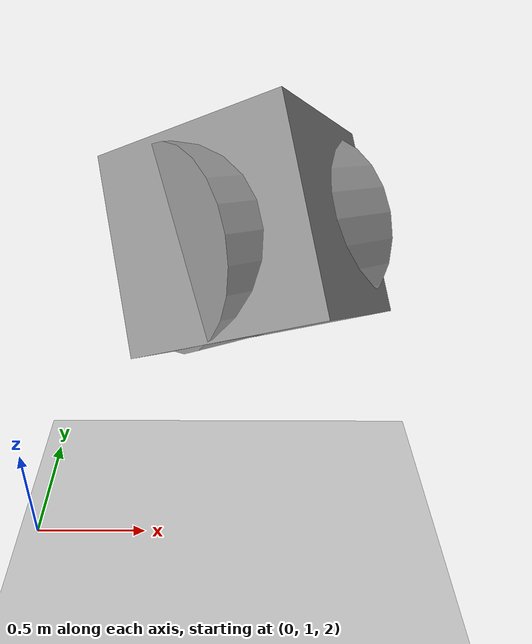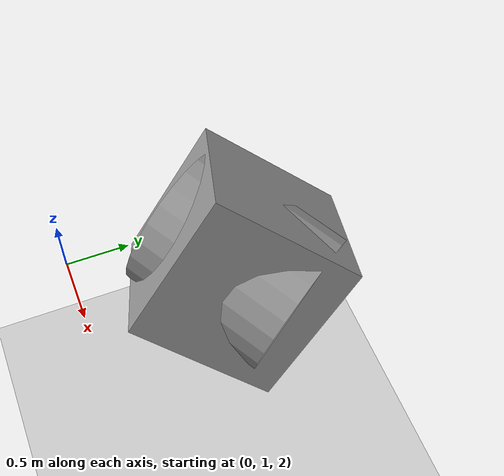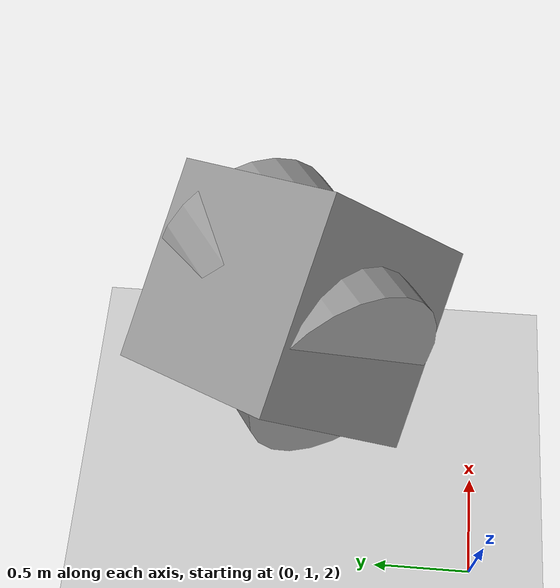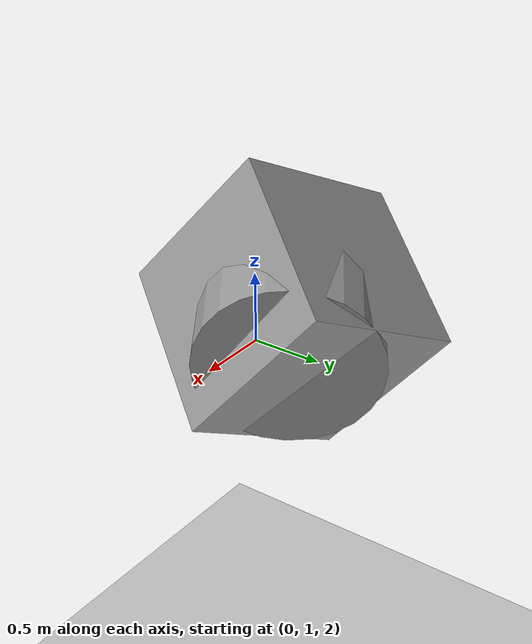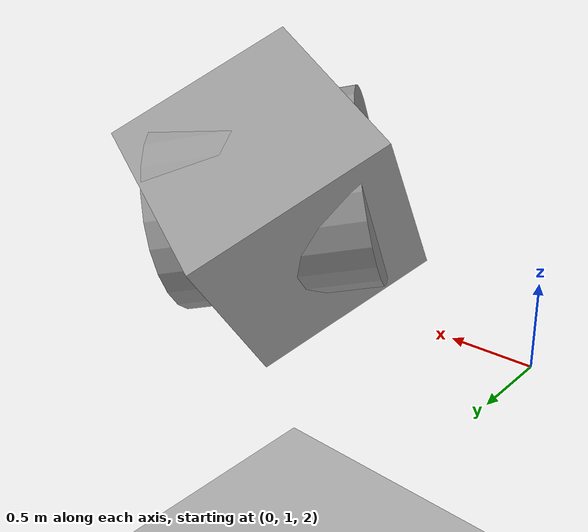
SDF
<?xml version="1.0"?>
<sdf version="1.4">
    <world name="default">
        <scene>
            <sky>
                <clouds>
                    <speed>12</speed>
                </clouds>
            </sky>
            <ambient>1.0 1.0 1.0 1.0</ambient>
            <shadows>false</shadows>
        </scene>
        <!-- A global light source -->
        <include>
            <uri>model://urdf/models/sun</uri>
        </include>
        <!-- A ground plane -->
        <include>
            <uri>model://urdf/models/dirt_plane</uri>
        </include>
        <physics type="ode">
            <max_step_size>0.0025</max_step_size>
            <real_time_factor>0</real_time_factor>
            <real_time_update_rate>1000</real_time_update_rate>
            <gravity>0 0 -9.8</gravity>
        </physics>
        <!-- Put obstacles here -->
        <model name="box_0">
            <pose frame="">1.000000 2.000000 3.000000 4.000000 4.000000 5.000000</pose>
            <link name="link">
                <inertial>
                    <mass>1.000000</mass>
                    <inertia>
                        <ixx>0.166667</ixx>
                        <ixy>0</ixy>
                        <ixz>0</ixz>
                        <iyy>0.166667</iyy>
                        <iyz>0</iyz>
                        <izz>0.166667</izz>
                    </inertia>
                </inertial>
                <collision name="collision">
                    <geometry>
                        <box>
                            <size >1.000000 1.000000 1.000000</size>
                        </box>
                    </geometry>
                    <max_contacts>10</max_contacts>
                    <surface>
                        <contact>
                            <ode/>
                        </contact>
                        <bounce/>
                        <friction>
                            <torsional>
                                <ode/>
                            </torsional>
                            <ode/>
                        </friction>
                    </surface>
                </collision>
                <visual name="visual">
                    <geometry>
                        <box>
                            <size >1.000000 1.000000 1.000000</size>
                        </box>
                    </geometry>
                    <material>
                        <script>
                            <name>Gazebo/Grey</name>
                            <uri>file://media/materials/scripts/gazebo.material</uri>
                        </script>
                    </material>
                </visual>
                <self_collide>0</self_collide>
                <kinematic>0</kinematic>
            </link>
        </model>
        <model name="cylinder_1">
            <pose frame="">1.000000 2.000000 3.000000 4.000000 5.000000 6.000000</pose>
            <link name="link">
                <inertial>
                    <mass>1.000000</mass>
                    <inertia>
                        <ixx>0.145833</ixx>
                        <ixy>0</ixy>
                        <ixz>0</ixz>
                        <iyy>0.145833</iyy>
                        <iyz>0</iyz>
                        <izz>0.125</izz>
                    </inertia>
                </inertial>
                <collision name="collision">
                    <geometry>
                        <cylinder>
                            <radius>0.500000</radius>
                            <length>1.000000</length>
                        </cylinder>
                    </geometry>
                    <max_contacts>10</max_contacts>
                    <surface>
                        <contact>
                            <ode/>
                        </contact>
                        <bounce/>
                        <friction>
                            <torsional>
                                <ode/>
                            </torsional>
                            <ode/>
                        </friction>
                    </surface>
                </collision>
                <visual name="visual">
                    <geometry>
                        <cylinder>
                            <radius>0.500000</radius>
                            <length>1.000000</length>
                        </cylinder>
                    </geometry>
                    <material>
                        <script>
                            <name>Gazebo/Grey</name>
                            <uri>file://media/materials/scripts/gazebo.material</uri>
                        </script>
                    </material>
                </visual>
                <self_collide>0</self_collide>
                <kinematic>0</kinematic>
            </link>
        </model>
    </world>
</sdf>

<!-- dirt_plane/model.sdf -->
<sdf version="1.5">
  <model name="dirt_plane">
    <static>true</static>
    <link name="link">
      <collision name="collision">
        <geometry>
          <plane>
            <normal>0 0 1</normal>
            <size>20 30</size>
          </plane>
        </geometry>
        <surface>
          <friction>
            <ode>
              <mu>100</mu>
              <mu2>50</mu2>
            </ode>
          </friction>
        </surface>
      </collision>
      <visual name="visual">
        <cast_shadows>false</cast_shadows>
        <geometry>
          <plane>
            <normal>0 0 1</normal>
            <size>20 30</size>
          </plane>
        </geometry>
        <material>
          <script>
            <uri>model://urdf/gazebo.material</uri>
            <name>Gazebo/Dirt</name>
          </script>
        </material>
      </visual>
    </link>
  </model>
</sdf>
